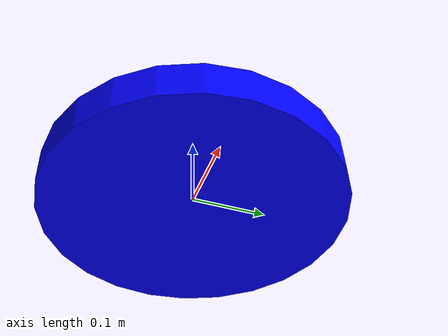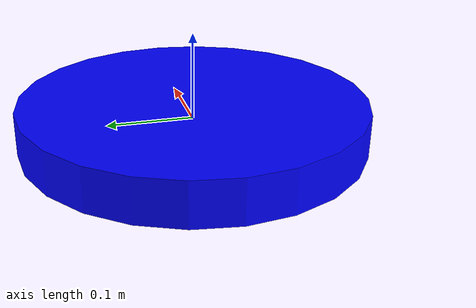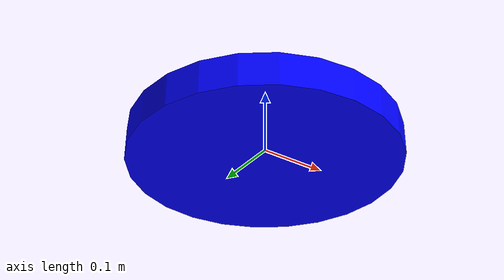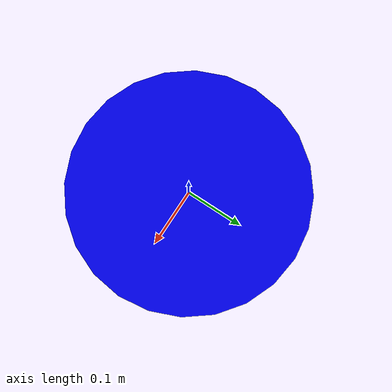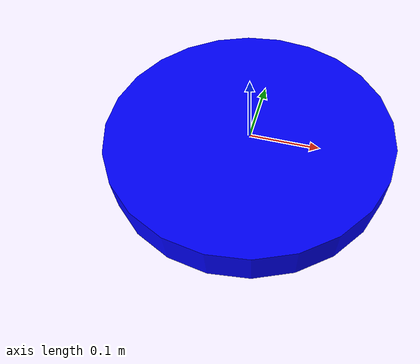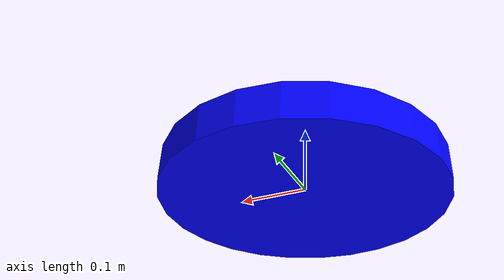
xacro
<?xml version="1.0"?>
<robot xmlns:xacro="http://www.ros.org/wiki/xacro" name="eyou_robot">

    <!-- Import ros2_control description -->

    <!-- Used for fixing robot to Gazebo 'world' -->
    <link name="world"/>

    <joint name="base_joint" type="fixed">
        <parent link="world"/>
        <child link="base_link"/>
        <origin xyz="0 0 0" rpy="0 0 0"/>
    </joint>

    <link name="base_link">
        <visual>
            <geometry>
                <cylinder length="0.05" radius="0.2"/>
            </geometry>
            <material name="blue">
                <color rgba="0.0 0.0 1.0 1.0"/>
            </material>
        </visual>
        <collision>
            <geometry>
                <cylinder length="0.05" radius="0.2"/>
            </geometry>
        </collision>
    </link>

    <!-- ros2_control hardware interface -->
    <ros2_control name="EyouSystem" type="system">
        <hardware>
            <!-- The plugin name must match the class name in the C++ code -->
            <plugin>eyou_robot_control/EyouSystemInterface</plugin>
            <!-- Parameters for the CAN device -->
            <param name="can_device_index">0</param>
            <param name="can_baud_rate">1000</param>
        </hardware>

        <!-- Left Arm Joints -->
        <joint name="left_arm_joint_1">
            <param name="node_id">21</param>
            <param name="start_enabled">false</param>
            <command_interface name="position"/>
            <state_interface name="position"/>
            <state_interface name="velocity"/>
        </joint>
        <joint name="left_arm_joint_2">
            <param name="node_id">22</param>
            <param name="start_enabled">false</param>
            <command_interface name="position"/>
            <state_interface name="position"/>
            <state_interface name="velocity"/>
        </joint>
        <joint name="left_arm_joint_3">
            <param name="node_id">23</param>
            <param name="start_enabled">false</param>
            <command_interface name="position"/>
            <state_interface name="position"/>
            <state_interface name="velocity"/>
        </joint>
        <joint name="left_arm_joint_4">
            <param name="node_id">24</param>
            <param name="start_enabled">false</param>
            <command_interface name="position"/>
            <state_interface name="position"/>
            <state_interface name="velocity"/>
        </joint>
        <joint name="left_arm_joint_5">
            <param name="node_id">25</param>
            <param name="start_enabled">false</param>
            <command_interface name="position"/>
            <state_interface name="position"/>
            <state_interface name="velocity"/>
        </joint>
        <joint name="left_arm_joint_6">
            <param name="node_id">26</param>
            <param name="start_enabled">false</param>
            <command_interface name="position"/>
            <state_interface name="position"/>
            <state_interface name="velocity"/>
        </joint>
        <joint name="left_arm_joint_7">
            <param name="node_id">27</param>
            <param name="start_enabled">false</param>
            <command_interface name="position"/>
            <state_interface name="position"/>
            <state_interface name="velocity"/>
        </joint>

        <!-- Right Arm Joints -->
        <joint name="right_arm_joint_1">
            <param name="node_id">11</param>
            <command_interface name="position"/>
            <state_interface name="position"/>
            <state_interface name="velocity"/>
        </joint>
        <joint name="right_arm_joint_2">
            <param name="node_id">12</param>
            <command_interface name="position"/>
            <state_interface name="position"/>
            <state_interface name="velocity"/>
        </joint>
        <joint name="right_arm_joint_3">
            <param name="node_id">13</param>
            <command_interface name="position"/>
            <state_interface name="position"/>
            <state_interface name="velocity"/>
        </joint>
        <joint name="right_arm_joint_4">
            <param name="node_id">14</param>
            <command_interface name="position"/>
            <state_interface name="position"/>
            <state_interface name="velocity"/>
        </joint>
        <joint name="right_arm_joint_5">
            <param name="node_id">15</param>
            <command_interface name="position"/>
            <state_interface name="position"/>
            <state_interface name="velocity"/>
        </joint>
        <joint name="right_arm_joint_6">
            <param name="node_id">16</param>
            <command_interface name="position"/>
            <state_interface name="position"/>
            <state_interface name="velocity"/>
        </joint>
        <joint name="right_arm_joint_7">
            <param name="node_id">17</param>
            <command_interface name="position"/>
            <state_interface name="position"/>
            <state_interface name="velocity"/>
        </joint>
    </ros2_control>
</robot>
